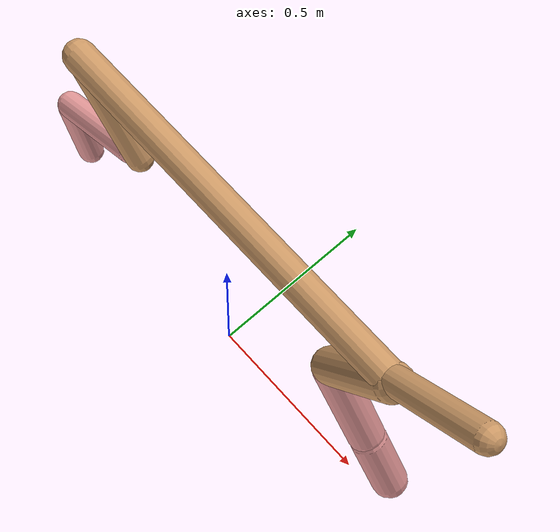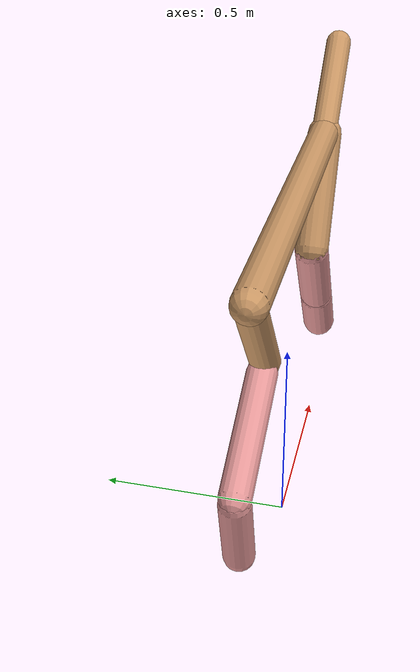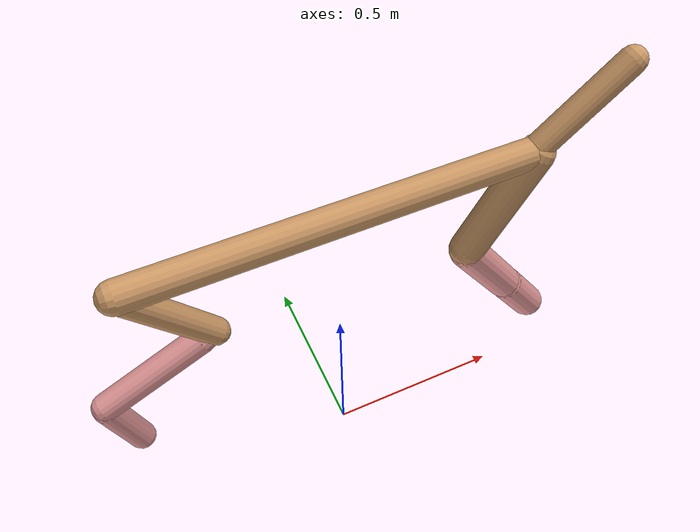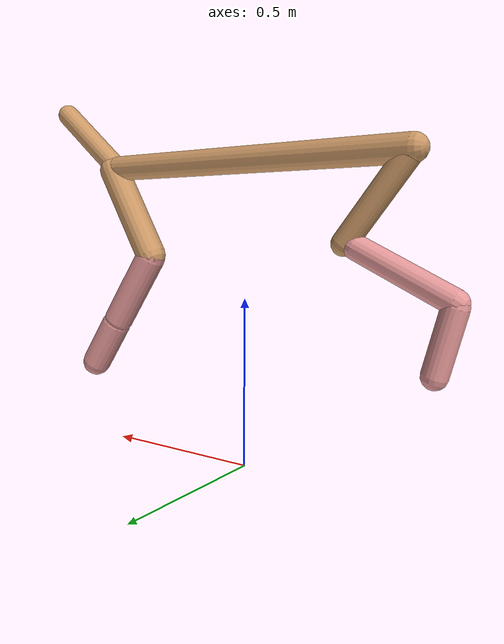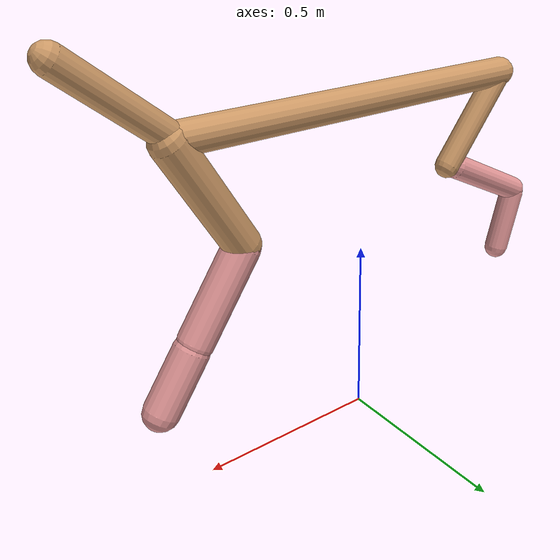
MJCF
<mujoco model="cheetah">
  <compiler angle="radian" coordinate="local" inertiafromgeom="true" settotalmass="14" />
  <default>
    <joint armature=".1" damping=".01" limited="true" solimplimit="0 .8 .03" solreflimit=".02 1" stiffness="8" />
    <geom conaffinity="0" condim="3" contype="1" friction="0.8 .1 .1" rgba="0.8 0.6 .4 1" solimp="0.0 0.8 0.01" solref="0.02 1" />
    <motor ctrllimited="true" ctrlrange="-1 1" />
  </default>
  <size nstack="300000" nuser_geom="1" />
  <option gravity="0 0 -9.81" timestep="0.01" />
  <worldbody>
    <body name="torso" pos="0.0 0.0 0.9058924504330113">
      <joint armature="0" axis="1 0 0" damping="0" limited="false" name="ignorex" pos="0 0 0" stiffness="0" type="slide" />
      <joint armature="0" axis="0 0 1" damping="0" limited="false" name="ignorez" pos="0 0 0" stiffness="0" type="slide" />
      <joint armature="0" axis="0 1 0" damping="0" limited="false" name="ignorey" pos="0 0 0" stiffness="0" type="hinge" />
      <geom fromto="-0.5 0.0 0.0 0.5308934799284049 0.0 0.0" name="torso" size="0.040257263440114155" type="capsule" />
      <geom axisangle="0 1 0 .87" name="head" pos="0.6308934799284048 0.0 0.1" size="0.03532179228268715 0.15" type="capsule" />

      <body name="bthigh" pos="-.5 0 0">
        <joint axis="0 1 0" damping="6" name="bthigh" pos="0 0 0" range="-.52 1.05" stiffness="240" type="hinge" />
        <geom axisangle="0 1 0 -3.8" name="bthigh" pos="0.09802785428749392 0.0 -0.12743621057374208" size="0.035022142951387114 0.1417654405348567" type="capsule" />
        <body name="bshin" pos="0.15605570857498782 0.0 -0.24487242114748417">
          <joint axis="0 1 0" damping="4.5" name="bshin" pos="0 0 0" range="-.785 .785" stiffness="180" type="hinge" />
          <geom axisangle="0 1 0 -2.03" name="bshin" pos="-0.1370071607553135 0.0 -0.06850358037765675" rgba="0.9 0.6 0.6 1" size="0.035022142951387114 0.1466539040015759" type="capsule" />
          <body name="bfoot" pos="-0.274014321510627 0.0 -0.1370071607553135">
            <joint axis="0 1 0" damping="3" name="bfoot" pos="0 0 0" range="-.4 .785" stiffness="120" type="hinge" />
            <geom axisangle="0 1 0 -.27" name="bfoot" pos="0.02938043343061766 0.0 -0.09499673475899711" rgba="0.9 0.6 0.6 1" size="0.035022142951387114 0.0919031131743209" type="capsule" />
            <inertial mass="10" />
          </body>
        </body>
      </body>
      <body name="fthigh" pos="0.5308934799284049 0.0 0.0">
        <joint axis="0 1 0" damping="4.5" name="fthigh" pos="0 0 0" range="-1.5 0.8" stiffness="180" type="hinge" />
        <geom axisangle="0 1 0 .52" name="fthigh" pos="-0.08443289847238217 0.0 -0.14474211166694084" size="0.04721966639967086 0.16164403337614072" type="capsule" />
        <body name="fshin" pos="-0.16886579694476433 0.0 -0.2894842233338817">
          <joint axis="0 1 0" damping="3" name="fshin" pos="0 0 0" range="-1.2 1.1" stiffness="120" type="hinge" />
          <geom axisangle="0 1 0 -.6" name="fshin" pos="0.07836621024336608 0.0 -0.10850706033696841" rgba="0.9 0.6 0.6 1" size="0.04721966639967086 0.12882907923211215" type="capsule" />
          <body name="ffoot" pos="0.15673242048673217 0.0 -0.21701412067393683">
            <joint axis="0 1 0" damping="1.5" name="ffoot" pos="0 0 0" range="-3.1 -0.3" stiffness="60" type="hinge" />
            <geom axisangle="0 1 0 -.6" name="ffoot" pos="0.05315235710209753 0.0 -0.08268144438104061" rgba="0.9 0.6 0.6 1" size="0.04721966639967086 0.08507580704007406" type="capsule" />
            <inertial mass="10" />
          </body>
        </body>
      </body>
    </body>
  </worldbody>
  <actuator>
    <motor gear="120" joint="bthigh" name="bthigh" />
    <motor gear="90" joint="bshin" name="bshin" />
    <motor gear="60" joint="bfoot" name="bfoot" />
    <motor gear="120" joint="fthigh" name="fthigh" />
    <motor gear="60" joint="fshin" name="fshin" />
    <motor gear="30" joint="ffoot" name="ffoot" />
  </actuator>
</mujoco>
